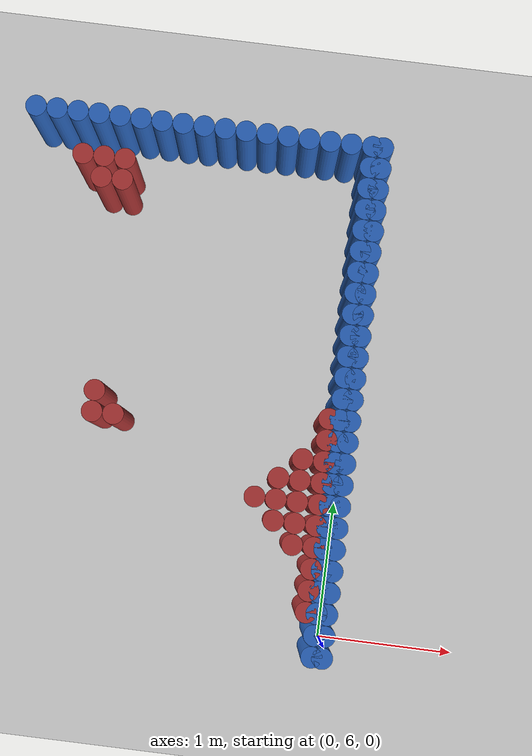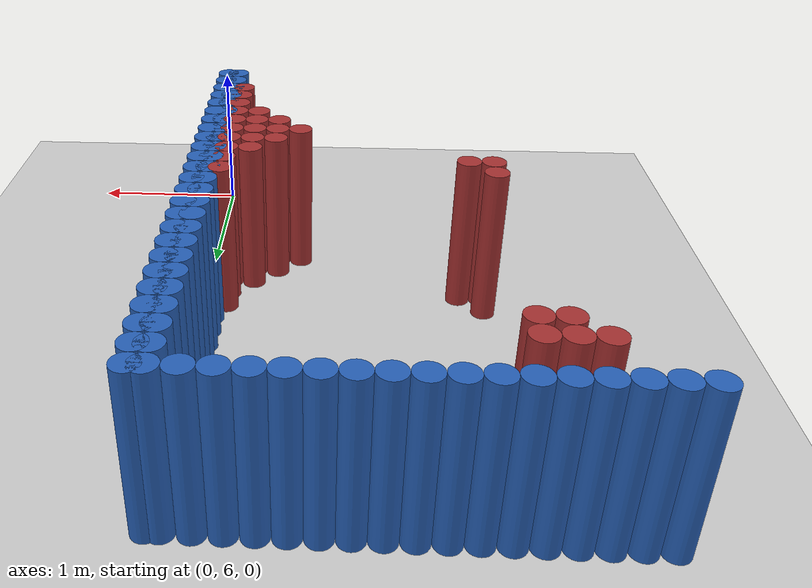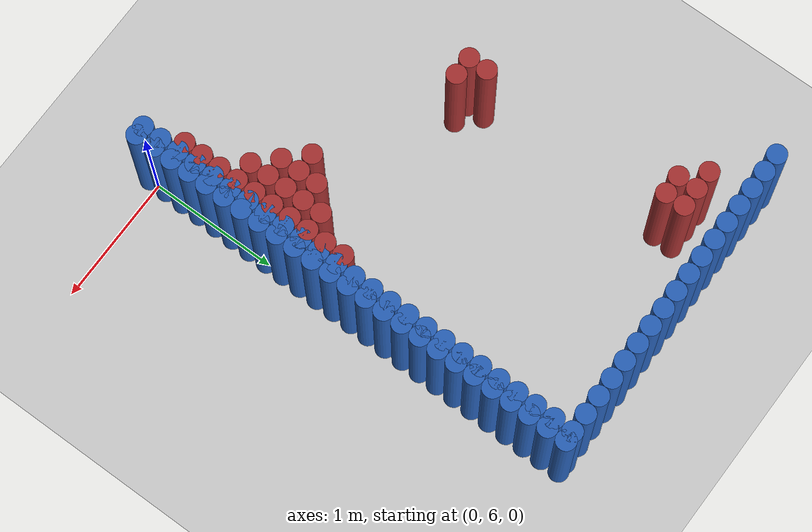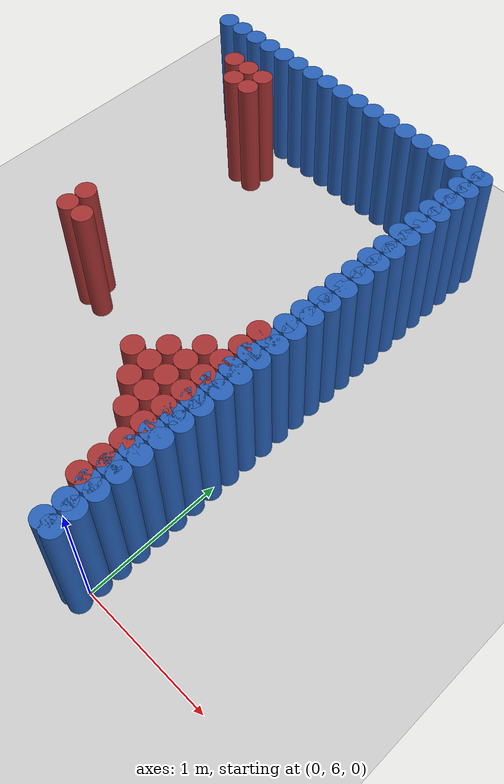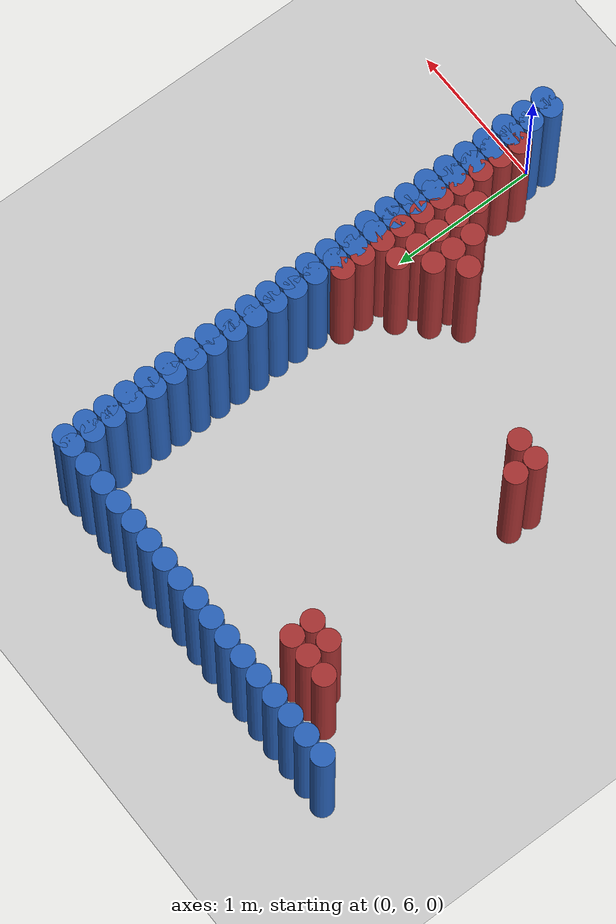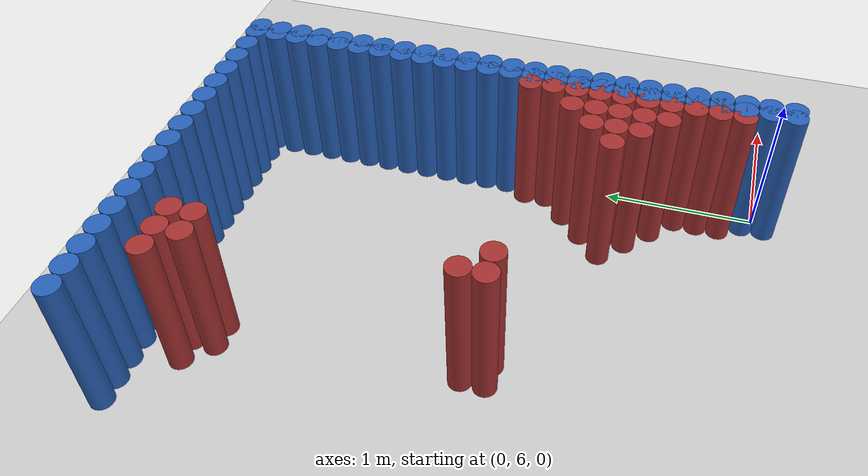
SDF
<sdf version="1.6">
 <world name="barn_world">
  <model name="ground_plane">
   <static>1</static>
   <link name="link">
    <collision name="collision">
     <geometry><plane><normal>0 0 1</normal><size>100 100</size></plane></geometry>
    </collision>
    <visual name="visual">
     <geometry><plane><normal>0 0 1</normal><size>100 100</size></plane></geometry>
     <material>
      <script><uri>file://media/materials/scripts/gazebo.material</uri><name>Gazebo/Grey</name></script>
     </material>
    </visual>
   </link>
  </model>
  <model name="unit_cylinder_220">
   <static>1</static>
   <pose>-2.1000 9.2250 0.5 0 0 0</pose>
   <link name="link">
    <collision name="collision">
     <geometry><cylinder><radius>0.075</radius><length>1</length></cylinder></geometry>
    </collision>
    <visual name="visual">
     <geometry><cylinder><radius>0.075</radius><length>1</length></cylinder></geometry>
     <material><ambient>0.648 0.192 0.192 1</ambient><diffuse>0.648 0.192 0.192 1</diffuse></material>
    </visual>
   </link>
  </model>
  <model name="unit_cylinder_223">
   <static>1</static>
   <pose>-1.9500 9.0750 0.5 0 0 0</pose>
   <link name="link">
    <collision name="collision">
     <geometry><cylinder><radius>0.075</radius><length>1</length></cylinder></geometry>
    </collision>
    <visual name="visual">
     <geometry><cylinder><radius>0.075</radius><length>1</length></cylinder></geometry>
     <material><ambient>0.648 0.192 0.192 1</ambient><diffuse>0.648 0.192 0.192 1</diffuse></material>
    </visual>
   </link>
  </model>
  <model name="unit_cylinder_224">
   <static>1</static>
   <pose>-1.9500 9.2250 0.5 0 0 0</pose>
   <link name="link">
    <collision name="collision">
     <geometry><cylinder><radius>0.075</radius><length>1</length></cylinder></geometry>
    </collision>
    <visual name="visual">
     <geometry><cylinder><radius>0.075</radius><length>1</length></cylinder></geometry>
     <material><ambient>0.648 0.192 0.192 1</ambient><diffuse>0.648 0.192 0.192 1</diffuse></material>
    </visual>
   </link>
  </model>
  <model name="unit_cylinder_225">
   <static>1</static>
   <pose>-1.8000 7.4250 0.5 0 0 0</pose>
   <link name="link">
    <collision name="collision">
     <geometry><cylinder><radius>0.075</radius><length>1</length></cylinder></geometry>
    </collision>
    <visual name="visual">
     <geometry><cylinder><radius>0.075</radius><length>1</length></cylinder></geometry>
     <material><ambient>0.648 0.192 0.192 1</ambient><diffuse>0.648 0.192 0.192 1</diffuse></material>
    </visual>
   </link>
  </model>
  <model name="unit_cylinder_226">
   <static>1</static>
   <pose>-1.8000 7.5750 0.5 0 0 0</pose>
   <link name="link">
    <collision name="collision">
     <geometry><cylinder><radius>0.075</radius><length>1</length></cylinder></geometry>
    </collision>
    <visual name="visual">
     <geometry><cylinder><radius>0.075</radius><length>1</length></cylinder></geometry>
     <material><ambient>0.648 0.192 0.192 1</ambient><diffuse>0.648 0.192 0.192 1</diffuse></material>
    </visual>
   </link>
  </model>
  <model name="unit_cylinder_227">
   <static>1</static>
   <pose>-1.8000 9.0750 0.5 0 0 0</pose>
   <link name="link">
    <collision name="collision">
     <geometry><cylinder><radius>0.075</radius><length>1</length></cylinder></geometry>
    </collision>
    <visual name="visual">
     <geometry><cylinder><radius>0.075</radius><length>1</length></cylinder></geometry>
     <material><ambient>0.648 0.192 0.192 1</ambient><diffuse>0.648 0.192 0.192 1</diffuse></material>
    </visual>
   </link>
  </model>
  <model name="unit_cylinder_228">
   <static>1</static>
   <pose>-1.8000 9.2250 0.5 0 0 0</pose>
   <link name="link">
    <collision name="collision">
     <geometry><cylinder><radius>0.075</radius><length>1</length></cylinder></geometry>
    </collision>
    <visual name="visual">
     <geometry><cylinder><radius>0.075</radius><length>1</length></cylinder></geometry>
     <material><ambient>0.648 0.192 0.192 1</ambient><diffuse>0.648 0.192 0.192 1</diffuse></material>
    </visual>
   </link>
  </model>
  <model name="unit_cylinder_229">
   <static>1</static>
   <pose>-1.6500 7.4250 0.5 0 0 0</pose>
   <link name="link">
    <collision name="collision">
     <geometry><cylinder><radius>0.075</radius><length>1</length></cylinder></geometry>
    </collision>
    <visual name="visual">
     <geometry><cylinder><radius>0.075</radius><length>1</length></cylinder></geometry>
     <material><ambient>0.648 0.192 0.192 1</ambient><diffuse>0.648 0.192 0.192 1</diffuse></material>
    </visual>
   </link>
  </model>
  <model name="unit_cylinder_230">
   <static>1</static>
   <pose>-0.6000 6.9750 0.5 0 0 0</pose>
   <link name="link">
    <collision name="collision">
     <geometry><cylinder><radius>0.075</radius><length>1</length></cylinder></geometry>
    </collision>
    <visual name="visual">
     <geometry><cylinder><radius>0.075</radius><length>1</length></cylinder></geometry>
     <material><ambient>0.648 0.192 0.192 1</ambient><diffuse>0.648 0.192 0.192 1</diffuse></material>
    </visual>
   </link>
  </model>
  <model name="unit_cylinder_231">
   <static>1</static>
   <pose>-0.4500 6.8250 0.5 0 0 0</pose>
   <link name="link">
    <collision name="collision">
     <geometry><cylinder><radius>0.075</radius><length>1</length></cylinder></geometry>
    </collision>
    <visual name="visual">
     <geometry><cylinder><radius>0.075</radius><length>1</length></cylinder></geometry>
     <material><ambient>0.648 0.192 0.192 1</ambient><diffuse>0.648 0.192 0.192 1</diffuse></material>
    </visual>
   </link>
  </model>
  <model name="unit_cylinder_232">
   <static>1</static>
   <pose>-0.4500 6.9750 0.5 0 0 0</pose>
   <link name="link">
    <collision name="collision">
     <geometry><cylinder><radius>0.075</radius><length>1</length></cylinder></geometry>
    </collision>
    <visual name="visual">
     <geometry><cylinder><radius>0.075</radius><length>1</length></cylinder></geometry>
     <material><ambient>0.648 0.192 0.192 1</ambient><diffuse>0.648 0.192 0.192 1</diffuse></material>
    </visual>
   </link>
  </model>
  <model name="unit_cylinder_233">
   <static>1</static>
   <pose>-0.4500 7.1250 0.5 0 0 0</pose>
   <link name="link">
    <collision name="collision">
     <geometry><cylinder><radius>0.075</radius><length>1</length></cylinder></geometry>
    </collision>
    <visual name="visual">
     <geometry><cylinder><radius>0.075</radius><length>1</length></cylinder></geometry>
     <material><ambient>0.648 0.192 0.192 1</ambient><diffuse>0.648 0.192 0.192 1</diffuse></material>
    </visual>
   </link>
  </model>
  <model name="unit_cylinder_235">
   <static>1</static>
   <pose>-0.3000 6.6750 0.5 0 0 0</pose>
   <link name="link">
    <collision name="collision">
     <geometry><cylinder><radius>0.075</radius><length>1</length></cylinder></geometry>
    </collision>
    <visual name="visual">
     <geometry><cylinder><radius>0.075</radius><length>1</length></cylinder></geometry>
     <material><ambient>0.648 0.192 0.192 1</ambient><diffuse>0.648 0.192 0.192 1</diffuse></material>
    </visual>
   </link>
  </model>
  <model name="unit_cylinder_236">
   <static>1</static>
   <pose>-0.3000 6.8250 0.5 0 0 0</pose>
   <link name="link">
    <collision name="collision">
     <geometry><cylinder><radius>0.075</radius><length>1</length></cylinder></geometry>
    </collision>
    <visual name="visual">
     <geometry><cylinder><radius>0.075</radius><length>1</length></cylinder></geometry>
     <material><ambient>0.648 0.192 0.192 1</ambient><diffuse>0.648 0.192 0.192 1</diffuse></material>
    </visual>
   </link>
  </model>
  <model name="unit_cylinder_237">
   <static>1</static>
   <pose>-0.3000 6.9750 0.5 0 0 0</pose>
   <link name="link">
    <collision name="collision">
     <geometry><cylinder><radius>0.075</radius><length>1</length></cylinder></geometry>
    </collision>
    <visual name="visual">
     <geometry><cylinder><radius>0.075</radius><length>1</length></cylinder></geometry>
     <material><ambient>0.648 0.192 0.192 1</ambient><diffuse>0.648 0.192 0.192 1</diffuse></material>
    </visual>
   </link>
  </model>
  <model name="unit_cylinder_238">
   <static>1</static>
   <pose>-0.3000 7.1250 0.5 0 0 0</pose>
   <link name="link">
    <collision name="collision">
     <geometry><cylinder><radius>0.075</radius><length>1</length></cylinder></geometry>
    </collision>
    <visual name="visual">
     <geometry><cylinder><radius>0.075</radius><length>1</length></cylinder></geometry>
     <material><ambient>0.648 0.192 0.192 1</ambient><diffuse>0.648 0.192 0.192 1</diffuse></material>
    </visual>
   </link>
  </model>
  <model name="unit_cylinder_239">
   <static>1</static>
   <pose>-0.3000 7.2750 0.5 0 0 0</pose>
   <link name="link">
    <collision name="collision">
     <geometry><cylinder><radius>0.075</radius><length>1</length></cylinder></geometry>
    </collision>
    <visual name="visual">
     <geometry><cylinder><radius>0.075</radius><length>1</length></cylinder></geometry>
     <material><ambient>0.648 0.192 0.192 1</ambient><diffuse>0.648 0.192 0.192 1</diffuse></material>
    </visual>
   </link>
  </model>
  <model name="unit_cylinder_243">
   <static>1</static>
   <pose>-0.1500 6.2250 0.5 0 0 0</pose>
   <link name="link">
    <collision name="collision">
     <geometry><cylinder><radius>0.075</radius><length>1</length></cylinder></geometry>
    </collision>
    <visual name="visual">
     <geometry><cylinder><radius>0.075</radius><length>1</length></cylinder></geometry>
     <material><ambient>0.648 0.192 0.192 1</ambient><diffuse>0.648 0.192 0.192 1</diffuse></material>
    </visual>
   </link>
  </model>
  <model name="unit_cylinder_244">
   <static>1</static>
   <pose>-0.1500 6.3750 0.5 0 0 0</pose>
   <link name="link">
    <collision name="collision">
     <geometry><cylinder><radius>0.075</radius><length>1</length></cylinder></geometry>
    </collision>
    <visual name="visual">
     <geometry><cylinder><radius>0.075</radius><length>1</length></cylinder></geometry>
     <material><ambient>0.648 0.192 0.192 1</ambient><diffuse>0.648 0.192 0.192 1</diffuse></material>
    </visual>
   </link>
  </model>
  <model name="unit_cylinder_245">
   <static>1</static>
   <pose>-0.1500 6.5250 0.5 0 0 0</pose>
   <link name="link">
    <collision name="collision">
     <geometry><cylinder><radius>0.075</radius><length>1</length></cylinder></geometry>
    </collision>
    <visual name="visual">
     <geometry><cylinder><radius>0.075</radius><length>1</length></cylinder></geometry>
     <material><ambient>0.648 0.192 0.192 1</ambient><diffuse>0.648 0.192 0.192 1</diffuse></material>
    </visual>
   </link>
  </model>
  <model name="unit_cylinder_246">
   <static>1</static>
   <pose>-0.1500 6.6750 0.5 0 0 0</pose>
   <link name="link">
    <collision name="collision">
     <geometry><cylinder><radius>0.075</radius><length>1</length></cylinder></geometry>
    </collision>
    <visual name="visual">
     <geometry><cylinder><radius>0.075</radius><length>1</length></cylinder></geometry>
     <material><ambient>0.648 0.192 0.192 1</ambient><diffuse>0.648 0.192 0.192 1</diffuse></material>
    </visual>
   </link>
  </model>
  <model name="unit_cylinder_247">
   <static>1</static>
   <pose>-0.1500 6.8250 0.5 0 0 0</pose>
   <link name="link">
    <collision name="collision">
     <geometry><cylinder><radius>0.075</radius><length>1</length></cylinder></geometry>
    </collision>
    <visual name="visual">
     <geometry><cylinder><radius>0.075</radius><length>1</length></cylinder></geometry>
     <material><ambient>0.648 0.192 0.192 1</ambient><diffuse>0.648 0.192 0.192 1</diffuse></material>
    </visual>
   </link>
  </model>
  <model name="unit_cylinder_248">
   <static>1</static>
   <pose>-0.1500 6.9750 0.5 0 0 0</pose>
   <link name="link">
    <collision name="collision">
     <geometry><cylinder><radius>0.075</radius><length>1</length></cylinder></geometry>
    </collision>
    <visual name="visual">
     <geometry><cylinder><radius>0.075</radius><length>1</length></cylinder></geometry>
     <material><ambient>0.648 0.192 0.192 1</ambient><diffuse>0.648 0.192 0.192 1</diffuse></material>
    </visual>
   </link>
  </model>
  <model name="unit_cylinder_249">
   <static>1</static>
   <pose>-0.1500 7.1250 0.5 0 0 0</pose>
   <link name="link">
    <collision name="collision">
     <geometry><cylinder><radius>0.075</radius><length>1</length></cylinder></geometry>
    </collision>
    <visual name="visual">
     <geometry><cylinder><radius>0.075</radius><length>1</length></cylinder></geometry>
     <material><ambient>0.648 0.192 0.192 1</ambient><diffuse>0.648 0.192 0.192 1</diffuse></material>
    </visual>
   </link>
  </model>
  <model name="unit_cylinder_250">
   <static>1</static>
   <pose>-0.1500 7.2750 0.5 0 0 0</pose>
   <link name="link">
    <collision name="collision">
     <geometry><cylinder><radius>0.075</radius><length>1</length></cylinder></geometry>
    </collision>
    <visual name="visual">
     <geometry><cylinder><radius>0.075</radius><length>1</length></cylinder></geometry>
     <material><ambient>0.648 0.192 0.192 1</ambient><diffuse>0.648 0.192 0.192 1</diffuse></material>
    </visual>
   </link>
  </model>
  <model name="unit_cylinder_251">
   <static>1</static>
   <pose>-0.1500 7.4250 0.5 0 0 0</pose>
   <link name="link">
    <collision name="collision">
     <geometry><cylinder><radius>0.075</radius><length>1</length></cylinder></geometry>
    </collision>
    <visual name="visual">
     <geometry><cylinder><radius>0.075</radius><length>1</length></cylinder></geometry>
     <material><ambient>0.648 0.192 0.192 1</ambient><diffuse>0.648 0.192 0.192 1</diffuse></material>
    </visual>
   </link>
  </model>
  <model name="unit_cylinder_252">
   <static>1</static>
   <pose>-0.1500 7.5750 0.5 0 0 0</pose>
   <link name="link">
    <collision name="collision">
     <geometry><cylinder><radius>0.075</radius><length>1</length></cylinder></geometry>
    </collision>
    <visual name="visual">
     <geometry><cylinder><radius>0.075</radius><length>1</length></cylinder></geometry>
     <material><ambient>0.648 0.192 0.192 1</ambient><diffuse>0.648 0.192 0.192 1</diffuse></material>
    </visual>
   </link>
  </model>
  <model name="unit_cylinder_258">
   <static>1</static>
   <pose>0.0000 5.9250 0.5 0 0 0</pose>
   <link name="link">
    <collision name="collision">
     <geometry><cylinder><radius>0.075</radius><length>1</length></cylinder></geometry>
    </collision>
    <visual name="visual">
     <geometry><cylinder><radius>0.075</radius><length>1</length></cylinder></geometry>
     <material><ambient>0.152 0.379 0.72 1</ambient><diffuse>0.152 0.379 0.72 1</diffuse></material>
    </visual>
   </link>
  </model>
  <model name="unit_cylinder_259">
   <static>1</static>
   <pose>0.0000 6.0750 0.5 0 0 0</pose>
   <link name="link">
    <collision name="collision">
     <geometry><cylinder><radius>0.075</radius><length>1</length></cylinder></geometry>
    </collision>
    <visual name="visual">
     <geometry><cylinder><radius>0.075</radius><length>1</length></cylinder></geometry>
     <material><ambient>0.152 0.379 0.72 1</ambient><diffuse>0.152 0.379 0.72 1</diffuse></material>
    </visual>
   </link>
  </model>
  <model name="unit_cylinder_260">
   <static>1</static>
   <pose>0.0000 6.2250 0.5 0 0 0</pose>
   <link name="link">
    <collision name="collision">
     <geometry><cylinder><radius>0.075</radius><length>1</length></cylinder></geometry>
    </collision>
    <visual name="visual">
     <geometry><cylinder><radius>0.075</radius><length>1</length></cylinder></geometry>
     <material><ambient>0.152 0.379 0.72 1</ambient><diffuse>0.152 0.379 0.72 1</diffuse></material>
    </visual>
   </link>
  </model>
  <model name="unit_cylinder_261">
   <static>1</static>
   <pose>0.0000 6.3750 0.5 0 0 0</pose>
   <link name="link">
    <collision name="collision">
     <geometry><cylinder><radius>0.075</radius><length>1</length></cylinder></geometry>
    </collision>
    <visual name="visual">
     <geometry><cylinder><radius>0.075</radius><length>1</length></cylinder></geometry>
     <material><ambient>0.152 0.379 0.72 1</ambient><diffuse>0.152 0.379 0.72 1</diffuse></material>
    </visual>
   </link>
  </model>
  <model name="unit_cylinder_262">
   <static>1</static>
   <pose>0.0000 6.5250 0.5 0 0 0</pose>
   <link name="link">
    <collision name="collision">
     <geometry><cylinder><radius>0.075</radius><length>1</length></cylinder></geometry>
    </collision>
    <visual name="visual">
     <geometry><cylinder><radius>0.075</radius><length>1</length></cylinder></geometry>
     <material><ambient>0.152 0.379 0.72 1</ambient><diffuse>0.152 0.379 0.72 1</diffuse></material>
    </visual>
   </link>
  </model>
  <model name="unit_cylinder_263">
   <static>1</static>
   <pose>0.0000 6.6750 0.5 0 0 0</pose>
   <link name="link">
    <collision name="collision">
     <geometry><cylinder><radius>0.075</radius><length>1</length></cylinder></geometry>
    </collision>
    <visual name="visual">
     <geometry><cylinder><radius>0.075</radius><length>1</length></cylinder></geometry>
     <material><ambient>0.152 0.379 0.72 1</ambient><diffuse>0.152 0.379 0.72 1</diffuse></material>
    </visual>
   </link>
  </model>
  <model name="unit_cylinder_264">
   <static>1</static>
   <pose>0.0000 6.8250 0.5 0 0 0</pose>
   <link name="link">
    <collision name="collision">
     <geometry><cylinder><radius>0.075</radius><length>1</length></cylinder></geometry>
    </collision>
    <visual name="visual">
     <geometry><cylinder><radius>0.075</radius><length>1</length></cylinder></geometry>
     <material><ambient>0.152 0.379 0.72 1</ambient><diffuse>0.152 0.379 0.72 1</diffuse></material>
    </visual>
   </link>
  </model>
  <model name="unit_cylinder_265">
   <static>1</static>
   <pose>0.0000 6.9750 0.5 0 0 0</pose>
   <link name="link">
    <collision name="collision">
     <geometry><cylinder><radius>0.075</radius><length>1</length></cylinder></geometry>
    </collision>
    <visual name="visual">
     <geometry><cylinder><radius>0.075</radius><length>1</length></cylinder></geometry>
     <material><ambient>0.152 0.379 0.72 1</ambient><diffuse>0.152 0.379 0.72 1</diffuse></material>
    </visual>
   </link>
  </model>
  <model name="unit_cylinder_266">
   <static>1</static>
   <pose>0.0000 7.1250 0.5 0 0 0</pose>
   <link name="link">
    <collision name="collision">
     <geometry><cylinder><radius>0.075</radius><length>1</length></cylinder></geometry>
    </collision>
    <visual name="visual">
     <geometry><cylinder><radius>0.075</radius><length>1</length></cylinder></geometry>
     <material><ambient>0.152 0.379 0.72 1</ambient><diffuse>0.152 0.379 0.72 1</diffuse></material>
    </visual>
   </link>
  </model>
  <model name="unit_cylinder_267">
   <static>1</static>
   <pose>0.0000 7.2750 0.5 0 0 0</pose>
   <link name="link">
    <collision name="collision">
     <geometry><cylinder><radius>0.075</radius><length>1</length></cylinder></geometry>
    </collision>
    <visual name="visual">
     <geometry><cylinder><radius>0.075</radius><length>1</length></cylinder></geometry>
     <material><ambient>0.152 0.379 0.72 1</ambient><diffuse>0.152 0.379 0.72 1</diffuse></material>
    </visual>
   </link>
  </model>
  <model name="unit_cylinder_268">
   <static>1</static>
   <pose>0.0000 7.4250 0.5 0 0 0</pose>
   <link name="link">
    <collision name="collision">
     <geometry><cylinder><radius>0.075</radius><length>1</length></cylinder></geometry>
    </collision>
    <visual name="visual">
     <geometry><cylinder><radius>0.075</radius><length>1</length></cylinder></geometry>
     <material><ambient>0.152 0.379 0.72 1</ambient><diffuse>0.152 0.379 0.72 1</diffuse></material>
    </visual>
   </link>
  </model>
  <model name="unit_cylinder_269">
   <static>1</static>
   <pose>0.0000 7.5750 0.5 0 0 0</pose>
   <link name="link">
    <collision name="collision">
     <geometry><cylinder><radius>0.075</radius><length>1</length></cylinder></geometry>
    </collision>
    <visual name="visual">
     <geometry><cylinder><radius>0.075</radius><length>1</length></cylinder></geometry>
     <material><ambient>0.152 0.379 0.72 1</ambient><diffuse>0.152 0.379 0.72 1</diffuse></material>
    </visual>
   </link>
  </model>
  <model name="unit_cylinder_270">
   <static>1</static>
   <pose>0.0000 7.7250 0.5 0 0 0</pose>
   <link name="link">
    <collision name="collision">
     <geometry><cylinder><radius>0.075</radius><length>1</length></cylinder></geometry>
    </collision>
    <visual name="visual">
     <geometry><cylinder><radius>0.075</radius><length>1</length></cylinder></geometry>
     <material><ambient>0.152 0.379 0.72 1</ambient><diffuse>0.152 0.379 0.72 1</diffuse></material>
    </visual>
   </link>
  </model>
  <model name="unit_cylinder_271">
   <static>1</static>
   <pose>0.0000 7.8750 0.5 0 0 0</pose>
   <link name="link">
    <collision name="collision">
     <geometry><cylinder><radius>0.075</radius><length>1</length></cylinder></geometry>
    </collision>
    <visual name="visual">
     <geometry><cylinder><radius>0.075</radius><length>1</length></cylinder></geometry>
     <material><ambient>0.152 0.379 0.72 1</ambient><diffuse>0.152 0.379 0.72 1</diffuse></material>
    </visual>
   </link>
  </model>
  <model name="unit_cylinder_272">
   <static>1</static>
   <pose>0.0000 8.0250 0.5 0 0 0</pose>
   <link name="link">
    <collision name="collision">
     <geometry><cylinder><radius>0.075</radius><length>1</length></cylinder></geometry>
    </collision>
    <visual name="visual">
     <geometry><cylinder><radius>0.075</radius><length>1</length></cylinder></geometry>
     <material><ambient>0.152 0.379 0.72 1</ambient><diffuse>0.152 0.379 0.72 1</diffuse></material>
    </visual>
   </link>
  </model>
  <model name="unit_cylinder_273">
   <static>1</static>
   <pose>0.0000 8.1750 0.5 0 0 0</pose>
   <link name="link">
    <collision name="collision">
     <geometry><cylinder><radius>0.075</radius><length>1</length></cylinder></geometry>
    </collision>
    <visual name="visual">
     <geometry><cylinder><radius>0.075</radius><length>1</length></cylinder></geometry>
     <material><ambient>0.152 0.379 0.72 1</ambient><diffuse>0.152 0.379 0.72 1</diffuse></material>
    </visual>
   </link>
  </model>
  <model name="unit_cylinder_274">
   <static>1</static>
   <pose>0.0000 8.3250 0.5 0 0 0</pose>
   <link name="link">
    <collision name="collision">
     <geometry><cylinder><radius>0.075</radius><length>1</length></cylinder></geometry>
    </collision>
    <visual name="visual">
     <geometry><cylinder><radius>0.075</radius><length>1</length></cylinder></geometry>
     <material><ambient>0.152 0.379 0.72 1</ambient><diffuse>0.152 0.379 0.72 1</diffuse></material>
    </visual>
   </link>
  </model>
  <model name="unit_cylinder_275">
   <static>1</static>
   <pose>0.0000 8.4750 0.5 0 0 0</pose>
   <link name="link">
    <collision name="collision">
     <geometry><cylinder><radius>0.075</radius><length>1</length></cylinder></geometry>
    </collision>
    <visual name="visual">
     <geometry><cylinder><radius>0.075</radius><length>1</length></cylinder></geometry>
     <material><ambient>0.152 0.379 0.72 1</ambient><diffuse>0.152 0.379 0.72 1</diffuse></material>
    </visual>
   </link>
  </model>
  <model name="unit_cylinder_276">
   <static>1</static>
   <pose>0.0000 8.6250 0.5 0 0 0</pose>
   <link name="link">
    <collision name="collision">
     <geometry><cylinder><radius>0.075</radius><length>1</length></cylinder></geometry>
    </collision>
    <visual name="visual">
     <geometry><cylinder><radius>0.075</radius><length>1</length></cylinder></geometry>
     <material><ambient>0.152 0.379 0.72 1</ambient><diffuse>0.152 0.379 0.72 1</diffuse></material>
    </visual>
   </link>
  </model>
  <model name="unit_cylinder_277">
   <static>1</static>
   <pose>0.0000 8.7750 0.5 0 0 0</pose>
   <link name="link">
    <collision name="collision">
     <geometry><cylinder><radius>0.075</radius><length>1</length></cylinder></geometry>
    </collision>
    <visual name="visual">
     <geometry><cylinder><radius>0.075</radius><length>1</length></cylinder></geometry>
     <material><ambient>0.152 0.379 0.72 1</ambient><diffuse>0.152 0.379 0.72 1</diffuse></material>
    </visual>
   </link>
  </model>
  <model name="unit_cylinder_278">
   <static>1</static>
   <pose>0.0000 8.9250 0.5 0 0 0</pose>
   <link name="link">
    <collision name="collision">
     <geometry><cylinder><radius>0.075</radius><length>1</length></cylinder></geometry>
    </collision>
    <visual name="visual">
     <geometry><cylinder><radius>0.075</radius><length>1</length></cylinder></geometry>
     <material><ambient>0.152 0.379 0.72 1</ambient><diffuse>0.152 0.379 0.72 1</diffuse></material>
    </visual>
   </link>
  </model>
  <model name="unit_cylinder_279">
   <static>1</static>
   <pose>0.0000 9.0750 0.5 0 0 0</pose>
   <link name="link">
    <collision name="collision">
     <geometry><cylinder><radius>0.075</radius><length>1</length></cylinder></geometry>
    </collision>
    <visual name="visual">
     <geometry><cylinder><radius>0.075</radius><length>1</length></cylinder></geometry>
     <material><ambient>0.152 0.379 0.72 1</ambient><diffuse>0.152 0.379 0.72 1</diffuse></material>
    </visual>
   </link>
  </model>
  <model name="unit_cylinder_280">
   <static>1</static>
   <pose>0.0000 9.2250 0.5 0 0 0</pose>
   <link name="link">
    <collision name="collision">
     <geometry><cylinder><radius>0.075</radius><length>1</length></cylinder></geometry>
    </collision>
    <visual name="visual">
     <geometry><cylinder><radius>0.075</radius><length>1</length></cylinder></geometry>
     <material><ambient>0.152 0.379 0.72 1</ambient><diffuse>0.152 0.379 0.72 1</diffuse></material>
    </visual>
   </link>
  </model>
  <model name="unit_cylinder_281">
   <static>1</static>
   <pose>0.0000 9.3750 0.5 0 0 0</pose>
   <link name="link">
    <collision name="collision">
     <geometry><cylinder><radius>0.075</radius><length>1</length></cylinder></geometry>
    </collision>
    <visual name="visual">
     <geometry><cylinder><radius>0.075</radius><length>1</length></cylinder></geometry>
     <material><ambient>0.152 0.379 0.72 1</ambient><diffuse>0.152 0.379 0.72 1</diffuse></material>
    </visual>
   </link>
  </model>
  <model name="unit_cylinder_282">
   <static>1</static>
   <pose>0.0000 9.5250 0.5 0 0 0</pose>
   <link name="link">
    <collision name="collision">
     <geometry><cylinder><radius>0.075</radius><length>1</length></cylinder></geometry>
    </collision>
    <visual name="visual">
     <geometry><cylinder><radius>0.075</radius><length>1</length></cylinder></geometry>
     <material><ambient>0.152 0.379 0.72 1</ambient><diffuse>0.152 0.379 0.72 1</diffuse></material>
    </visual>
   </link>
  </model>
  <model name="unit_cylinder_283">
   <static>1</static>
   <pose>-0.0750 9.5250 0.5 0 0 0</pose>
   <link name="link">
    <collision name="collision">
     <geometry><cylinder><radius>0.075</radius><length>1</length></cylinder></geometry>
    </collision>
    <visual name="visual">
     <geometry><cylinder><radius>0.075</radius><length>1</length></cylinder></geometry>
     <material><ambient>0.152 0.379 0.72 1</ambient><diffuse>0.152 0.379 0.72 1</diffuse></material>
    </visual>
   </link>
  </model>
  <model name="unit_cylinder_284">
   <static>1</static>
   <pose>-0.2250 9.5250 0.5 0 0 0</pose>
   <link name="link">
    <collision name="collision">
     <geometry><cylinder><radius>0.075</radius><length>1</length></cylinder></geometry>
    </collision>
    <visual name="visual">
     <geometry><cylinder><radius>0.075</radius><length>1</length></cylinder></geometry>
     <material><ambient>0.152 0.379 0.72 1</ambient><diffuse>0.152 0.379 0.72 1</diffuse></material>
    </visual>
   </link>
  </model>
  <model name="unit_cylinder_285">
   <static>1</static>
   <pose>-0.3750 9.5250 0.5 0 0 0</pose>
   <link name="link">
    <collision name="collision">
     <geometry><cylinder><radius>0.075</radius><length>1</length></cylinder></geometry>
    </collision>
    <visual name="visual">
     <geometry><cylinder><radius>0.075</radius><length>1</length></cylinder></geometry>
     <material><ambient>0.152 0.379 0.72 1</ambient><diffuse>0.152 0.379 0.72 1</diffuse></material>
    </visual>
   </link>
  </model>
  <model name="unit_cylinder_286">
   <static>1</static>
   <pose>-0.5250 9.5250 0.5 0 0 0</pose>
   <link name="link">
    <collision name="collision">
     <geometry><cylinder><radius>0.075</radius><length>1</length></cylinder></geometry>
    </collision>
    <visual name="visual">
     <geometry><cylinder><radius>0.075</radius><length>1</length></cylinder></geometry>
     <material><ambient>0.152 0.379 0.72 1</ambient><diffuse>0.152 0.379 0.72 1</diffuse></material>
    </visual>
   </link>
  </model>
  <model name="unit_cylinder_287">
   <static>1</static>
   <pose>-0.6750 9.5250 0.5 0 0 0</pose>
   <link name="link">
    <collision name="collision">
     <geometry><cylinder><radius>0.075</radius><length>1</length></cylinder></geometry>
    </collision>
    <visual name="visual">
     <geometry><cylinder><radius>0.075</radius><length>1</length></cylinder></geometry>
     <material><ambient>0.152 0.379 0.72 1</ambient><diffuse>0.152 0.379 0.72 1</diffuse></material>
    </visual>
   </link>
  </model>
  <model name="unit_cylinder_288">
   <static>1</static>
   <pose>-0.8250 9.5250 0.5 0 0 0</pose>
   <link name="link">
    <collision name="collision">
     <geometry><cylinder><radius>0.075</radius><length>1</length></cylinder></geometry>
    </collision>
    <visual name="visual">
     <geometry><cylinder><radius>0.075</radius><length>1</length></cylinder></geometry>
     <material><ambient>0.152 0.379 0.72 1</ambient><diffuse>0.152 0.379 0.72 1</diffuse></material>
    </visual>
   </link>
  </model>
  <model name="unit_cylinder_289">
   <static>1</static>
   <pose>-0.9750 9.5250 0.5 0 0 0</pose>
   <link name="link">
    <collision name="collision">
     <geometry><cylinder><radius>0.075</radius><length>1</length></cylinder></geometry>
    </collision>
    <visual name="visual">
     <geometry><cylinder><radius>0.075</radius><length>1</length></cylinder></geometry>
     <material><ambient>0.152 0.379 0.72 1</ambient><diffuse>0.152 0.379 0.72 1</diffuse></material>
    </visual>
   </link>
  </model>
  <model name="unit_cylinder_290">
   <static>1</static>
   <pose>-1.1250 9.5250 0.5 0 0 0</pose>
   <link name="link">
    <collision name="collision">
     <geometry><cylinder><radius>0.075</radius><length>1</length></cylinder></geometry>
    </collision>
    <visual name="visual">
     <geometry><cylinder><radius>0.075</radius><length>1</length></cylinder></geometry>
     <material><ambient>0.152 0.379 0.72 1</ambient><diffuse>0.152 0.379 0.72 1</diffuse></material>
    </visual>
   </link>
  </model>
  <model name="unit_cylinder_291">
   <static>1</static>
   <pose>-1.2750 9.5250 0.5 0 0 0</pose>
   <link name="link">
    <collision name="collision">
     <geometry><cylinder><radius>0.075</radius><length>1</length></cylinder></geometry>
    </collision>
    <visual name="visual">
     <geometry><cylinder><radius>0.075</radius><length>1</length></cylinder></geometry>
     <material><ambient>0.152 0.379 0.72 1</ambient><diffuse>0.152 0.379 0.72 1</diffuse></material>
    </visual>
   </link>
  </model>
  <model name="unit_cylinder_292">
   <static>1</static>
   <pose>-1.4250 9.5250 0.5 0 0 0</pose>
   <link name="link">
    <collision name="collision">
     <geometry><cylinder><radius>0.075</radius><length>1</length></cylinder></geometry>
    </collision>
    <visual name="visual">
     <geometry><cylinder><radius>0.075</radius><length>1</length></cylinder></geometry>
     <material><ambient>0.152 0.379 0.72 1</ambient><diffuse>0.152 0.379 0.72 1</diffuse></material>
    </visual>
   </link>
  </model>
  <model name="unit_cylinder_293">
   <static>1</static>
   <pose>-1.5750 9.5250 0.5 0 0 0</pose>
   <link name="link">
    <collision name="collision">
     <geometry><cylinder><radius>0.075</radius><length>1</length></cylinder></geometry>
    </collision>
    <visual name="visual">
     <geometry><cylinder><radius>0.075</radius><length>1</length></cylinder></geometry>
     <material><ambient>0.152 0.379 0.72 1</ambient><diffuse>0.152 0.379 0.72 1</diffuse></material>
    </visual>
   </link>
  </model>
  <model name="unit_cylinder_294">
   <static>1</static>
   <pose>-1.7250 9.5250 0.5 0 0 0</pose>
   <link name="link">
    <collision name="collision">
     <geometry><cylinder><radius>0.075</radius><length>1</length></cylinder></geometry>
    </collision>
    <visual name="visual">
     <geometry><cylinder><radius>0.075</radius><length>1</length></cylinder></geometry>
     <material><ambient>0.152 0.379 0.72 1</ambient><diffuse>0.152 0.379 0.72 1</diffuse></material>
    </visual>
   </link>
  </model>
  <model name="unit_cylinder_295">
   <static>1</static>
   <pose>-1.8750 9.5250 0.5 0 0 0</pose>
   <link name="link">
    <collision name="collision">
     <geometry><cylinder><radius>0.075</radius><length>1</length></cylinder></geometry>
    </collision>
    <visual name="visual">
     <geometry><cylinder><radius>0.075</radius><length>1</length></cylinder></geometry>
     <material><ambient>0.152 0.379 0.72 1</ambient><diffuse>0.152 0.379 0.72 1</diffuse></material>
    </visual>
   </link>
  </model>
  <model name="unit_cylinder_296">
   <static>1</static>
   <pose>-2.0250 9.5250 0.5 0 0 0</pose>
   <link name="link">
    <collision name="collision">
     <geometry><cylinder><radius>0.075</radius><length>1</length></cylinder></geometry>
    </collision>
    <visual name="visual">
     <geometry><cylinder><radius>0.075</radius><length>1</length></cylinder></geometry>
     <material><ambient>0.152 0.379 0.72 1</ambient><diffuse>0.152 0.379 0.72 1</diffuse></material>
    </visual>
   </link>
  </model>
  <model name="unit_cylinder_297">
   <static>1</static>
   <pose>-2.1750 9.5250 0.5 0 0 0</pose>
   <link name="link">
    <collision name="collision">
     <geometry><cylinder><radius>0.075</radius><length>1</length></cylinder></geometry>
    </collision>
    <visual name="visual">
     <geometry><cylinder><radius>0.075</radius><length>1</length></cylinder></geometry>
     <material><ambient>0.152 0.379 0.72 1</ambient><diffuse>0.152 0.379 0.72 1</diffuse></material>
    </visual>
   </link>
  </model>
  <model name="unit_cylinder_298">
   <static>1</static>
   <pose>-2.3250 9.5250 0.5 0 0 0</pose>
   <link name="link">
    <collision name="collision">
     <geometry><cylinder><radius>0.075</radius><length>1</length></cylinder></geometry>
    </collision>
    <visual name="visual">
     <geometry><cylinder><radius>0.075</radius><length>1</length></cylinder></geometry>
     <material><ambient>0.152 0.379 0.72 1</ambient><diffuse>0.152 0.379 0.72 1</diffuse></material>
    </visual>
   </link>
  </model>
  <model name="unit_cylinder_299">
   <static>1</static>
   <pose>-2.4750 9.5250 0.5 0 0 0</pose>
   <link name="link">
    <collision name="collision">
     <geometry><cylinder><radius>0.075</radius><length>1</length></cylinder></geometry>
    </collision>
    <visual name="visual">
     <geometry><cylinder><radius>0.075</radius><length>1</length></cylinder></geometry>
     <material><ambient>0.152 0.379 0.72 1</ambient><diffuse>0.152 0.379 0.72 1</diffuse></material>
    </visual>
   </link>
  </model>
  <model name="unit_cylinder_323">
   <static>1</static>
   <pose>-0.0750 5.9250 0.5 0 0 0</pose>
   <link name="link">
    <collision name="collision">
     <geometry><cylinder><radius>0.075</radius><length>1</length></cylinder></geometry>
    </collision>
    <visual name="visual">
     <geometry><cylinder><radius>0.075</radius><length>1</length></cylinder></geometry>
     <material><ambient>0.152 0.379 0.72 1</ambient><diffuse>0.152 0.379 0.72 1</diffuse></material>
    </visual>
   </link>
  </model>
  <model name="unit_cylinder_325">
   <static>1</static>
   <pose>-0.0750 6.0750 0.5 0 0 0</pose>
   <link name="link">
    <collision name="collision">
     <geometry><cylinder><radius>0.075</radius><length>1</length></cylinder></geometry>
    </collision>
    <visual name="visual">
     <geometry><cylinder><radius>0.075</radius><length>1</length></cylinder></geometry>
     <material><ambient>0.152 0.379 0.72 1</ambient><diffuse>0.152 0.379 0.72 1</diffuse></material>
    </visual>
   </link>
  </model>
  <model name="unit_cylinder_327">
   <static>1</static>
   <pose>-0.0750 6.2250 0.5 0 0 0</pose>
   <link name="link">
    <collision name="collision">
     <geometry><cylinder><radius>0.075</radius><length>1</length></cylinder></geometry>
    </collision>
    <visual name="visual">
     <geometry><cylinder><radius>0.075</radius><length>1</length></cylinder></geometry>
     <material><ambient>0.152 0.379 0.72 1</ambient><diffuse>0.152 0.379 0.72 1</diffuse></material>
    </visual>
   </link>
  </model>
  <model name="unit_cylinder_329">
   <static>1</static>
   <pose>-0.0750 6.3750 0.5 0 0 0</pose>
   <link name="link">
    <collision name="collision">
     <geometry><cylinder><radius>0.075</radius><length>1</length></cylinder></geometry>
    </collision>
    <visual name="visual">
     <geometry><cylinder><radius>0.075</radius><length>1</length></cylinder></geometry>
     <material><ambient>0.152 0.379 0.72 1</ambient><diffuse>0.152 0.379 0.72 1</diffuse></material>
    </visual>
   </link>
  </model>
  <model name="unit_cylinder_331">
   <static>1</static>
   <pose>-0.0750 6.5250 0.5 0 0 0</pose>
   <link name="link">
    <collision name="collision">
     <geometry><cylinder><radius>0.075</radius><length>1</length></cylinder></geometry>
    </collision>
    <visual name="visual">
     <geometry><cylinder><radius>0.075</radius><length>1</length></cylinder></geometry>
     <material><ambient>0.152 0.379 0.72 1</ambient><diffuse>0.152 0.379 0.72 1</diffuse></material>
    </visual>
   </link>
  </model>
  <model name="unit_cylinder_333">
   <static>1</static>
   <pose>-0.0750 6.6750 0.5 0 0 0</pose>
   <link name="link">
    <collision name="collision">
     <geometry><cylinder><radius>0.075</radius><length>1</length></cylinder></geometry>
    </collision>
    <visual name="visual">
     <geometry><cylinder><radius>0.075</radius><length>1</length></cylinder></geometry>
     <material><ambient>0.152 0.379 0.72 1</ambient><diffuse>0.152 0.379 0.72 1</diffuse></material>
    </visual>
   </link>
  </model>
  <model name="unit_cylinder_335">
   <static>1</static>
   <pose>-0.0750 6.8250 0.5 0 0 0</pose>
   <link name="link">
    <collision name="collision">
     <geometry><cylinder><radius>0.075</radius><length>1</length></cylinder></geometry>
    </collision>
    <visual name="visual">
     <geometry><cylinder><radius>0.075</radius><length>1</length></cylinder></geometry>
     <material><ambient>0.152 0.379 0.72 1</ambient><diffuse>0.152 0.379 0.72 1</diffuse></material>
    </visual>
   </link>
  </model>
  <model name="unit_cylinder_337">
   <static>1</static>
   <pose>-0.0750 6.9750 0.5 0 0 0</pose>
   <link name="link">
    <collision name="collision">
     <geometry><cylinder><radius>0.075</radius><length>1</length></cylinder></geometry>
    </collision>
    <visual name="visual">
     <geometry><cylinder><radius>0.075</radius><length>1</length></cylinder></geometry>
     <material><ambient>0.152 0.379 0.72 1</ambient><diffuse>0.152 0.379 0.72 1</diffuse></material>
    </visual>
   </link>
  </model>
  <model name="unit_cylinder_339">
   <static>1</static>
   <pose>-0.0750 7.1250 0.5 0 0 0</pose>
   <link name="link">
    <collision name="collision">
     <geometry><cylinder><radius>0.075</radius><length>1</length></cylinder></geometry>
    </collision>
    <visual name="visual">
     <geometry><cylinder><radius>0.075</radius><length>1</length></cylinder></geometry>
     <material><ambient>0.152 0.379 0.72 1</ambient><diffuse>0.152 0.379 0.72 1</diffuse></material>
    </visual>
   </link>
  </model>
  <model name="unit_cylinder_341">
   <static>1</static>
   <pose>-0.0750 7.2750 0.5 0 0 0</pose>
   <link name="link">
    <collision name="collision">
     <geometry><cylinder><radius>0.075</radius><length>1</length></cylinder></geometry>
    </collision>
    <visual name="visual">
     <geometry><cylinder><radius>0.075</radius><length>1</length></cylinder></geometry>
     <material><ambient>0.152 0.379 0.72 1</ambient><diffuse>0.152 0.379 0.72 1</diffuse></material>
    </visual>
   </link>
  </model>
  <model name="unit_cylinder_343">
   <static>1</static>
   <pose>-0.0750 7.4250 0.5 0 0 0</pose>
   <link name="link">
    <collision name="collision">
     <geometry><cylinder><radius>0.075</radius><length>1</length></cylinder></geometry>
    </collision>
    <visual name="visual">
     <geometry><cylinder><radius>0.075</radius><length>1</length></cylinder></geometry>
     <material><ambient>0.152 0.379 0.72 1</ambient><diffuse>0.152 0.379 0.72 1</diffuse></material>
    </visual>
   </link>
  </model>
  <model name="unit_cylinder_345">
   <static>1</static>
   <pose>-0.0750 7.5750 0.5 0 0 0</pose>
   <link name="link">
    <collision name="collision">
     <geometry><cylinder><radius>0.075</radius><length>1</length></cylinder></geometry>
    </collision>
    <visual name="visual">
     <geometry><cylinder><radius>0.075</radius><length>1</length></cylinder></geometry>
     <material><ambient>0.152 0.379 0.72 1</ambient><diffuse>0.152 0.379 0.72 1</diffuse></material>
    </visual>
   </link>
  </model>
  <model name="unit_cylinder_347">
   <static>1</static>
   <pose>-0.0750 7.7250 0.5 0 0 0</pose>
   <link name="link">
    <collision name="collision">
     <geometry><cylinder><radius>0.075</radius><length>1</length></cylinder></geometry>
    </collision>
    <visual name="visual">
     <geometry><cylinder><radius>0.075</radius><length>1</length></cylinder></geometry>
     <material><ambient>0.152 0.379 0.72 1</ambient><diffuse>0.152 0.379 0.72 1</diffuse></material>
    </visual>
   </link>
  </model>
  <model name="unit_cylinder_349">
   <static>1</static>
   <pose>-0.0750 7.8750 0.5 0 0 0</pose>
   <link name="link">
    <collision name="collision">
     <geometry><cylinder><radius>0.075</radius><length>1</length></cylinder></geometry>
    </collision>
    <visual name="visual">
     <geometry><cylinder><radius>0.075</radius><length>1</length></cylinder></geometry>
     <material><ambient>0.152 0.379 0.72 1</ambient><diffuse>0.152 0.379 0.72 1</diffuse></material>
    </visual>
   </link>
  </model>
  <model name="unit_cylinder_351">
   <static>1</static>
   <pose>-0.0750 8.0250 0.5 0 0 0</pose>
   <link name="link">
    <collision name="collision">
     <geometry><cylinder><radius>0.075</radius><length>1</length></cylinder></geometry>
    </collision>
    <visual name="visual">
     <geometry><cylinder><radius>0.075</radius><length>1</length></cylinder></geometry>
     <material><ambient>0.152 0.379 0.72 1</ambient><diffuse>0.152 0.379 0.72 1</diffuse></material>
    </visual>
   </link>
  </model>
  <model name="unit_cylinder_353">
   <static>1</static>
   <pose>-0.0750 8.1750 0.5 0 0 0</pose>
   <link name="link">
    <collision name="collision">
     <geometry><cylinder><radius>0.075</radius><length>1</length></cylinder></geometry>
    </collision>
    <visual name="visual">
     <geometry><cylinder><radius>0.075</radius><length>1</length></cylinder></geometry>
     <material><ambient>0.152 0.379 0.72 1</ambient><diffuse>0.152 0.379 0.72 1</diffuse></material>
    </visual>
   </link>
  </model>
  <model name="unit_cylinder_355">
   <static>1</static>
   <pose>-0.0750 8.3250 0.5 0 0 0</pose>
   <link name="link">
    <collision name="collision">
     <geometry><cylinder><radius>0.075</radius><length>1</length></cylinder></geometry>
    </collision>
    <visual name="visual">
     <geometry><cylinder><radius>0.075</radius><length>1</length></cylinder></geometry>
     <material><ambient>0.152 0.379 0.72 1</ambient><diffuse>0.152 0.379 0.72 1</diffuse></material>
    </visual>
   </link>
  </model>
  <model name="unit_cylinder_357">
   <static>1</static>
   <pose>-0.0750 8.4750 0.5 0 0 0</pose>
   <link name="link">
    <collision name="collision">
     <geometry><cylinder><radius>0.075</radius><length>1</length></cylinder></geometry>
    </collision>
    <visual name="visual">
     <geometry><cylinder><radius>0.075</radius><length>1</length></cylinder></geometry>
     <material><ambient>0.152 0.379 0.72 1</ambient><diffuse>0.152 0.379 0.72 1</diffuse></material>
    </visual>
   </link>
  </model>
  <model name="unit_cylinder_359">
   <static>1</static>
   <pose>-0.0750 8.6250 0.5 0 0 0</pose>
   <link name="link">
    <collision name="collision">
     <geometry><cylinder><radius>0.075</radius><length>1</length></cylinder></geometry>
    </collision>
    <visual name="visual">
     <geometry><cylinder><radius>0.075</radius><length>1</length></cylinder></geometry>
     <material><ambient>0.152 0.379 0.72 1</ambient><diffuse>0.152 0.379 0.72 1</diffuse></material>
    </visual>
   </link>
  </model>
  <model name="unit_cylinder_361">
   <static>1</static>
   <pose>-0.0750 8.7750 0.5 0 0 0</pose>
   <link name="link">
    <collision name="collision">
     <geometry><cylinder><radius>0.075</radius><length>1</length></cylinder></geometry>
    </collision>
    <visual name="visual">
     <geometry><cylinder><radius>0.075</radius><length>1</length></cylinder></geometry>
     <material><ambient>0.152 0.379 0.72 1</ambient><diffuse>0.152 0.379 0.72 1</diffuse></material>
    </visual>
   </link>
  </model>
  <model name="unit_cylinder_363">
   <static>1</static>
   <pose>-0.0750 8.9250 0.5 0 0 0</pose>
   <link name="link">
    <collision name="collision">
     <geometry><cylinder><radius>0.075</radius><length>1</length></cylinder></geometry>
    </collision>
    <visual name="visual">
     <geometry><cylinder><radius>0.075</radius><length>1</length></cylinder></geometry>
     <material><ambient>0.152 0.379 0.72 1</ambient><diffuse>0.152 0.379 0.72 1</diffuse></material>
    </visual>
   </link>
  </model>
  <model name="unit_cylinder_365">
   <static>1</static>
   <pose>-0.0750 9.0750 0.5 0 0 0</pose>
   <link name="link">
    <collision name="collision">
     <geometry><cylinder><radius>0.075</radius><length>1</length></cylinder></geometry>
    </collision>
    <visual name="visual">
     <geometry><cylinder><radius>0.075</radius><length>1</length></cylinder></geometry>
     <material><ambient>0.152 0.379 0.72 1</ambient><diffuse>0.152 0.379 0.72 1</diffuse></material>
    </visual>
   </link>
  </model>
  <model name="unit_cylinder_367">
   <static>1</static>
   <pose>-0.0750 9.2250 0.5 0 0 0</pose>
   <link name="link">
    <collision name="collision">
     <geometry><cylinder><radius>0.075</radius><length>1</length></cylinder></geometry>
    </collision>
    <visual name="visual">
     <geometry><cylinder><radius>0.075</radius><length>1</length></cylinder></geometry>
     <material><ambient>0.152 0.379 0.72 1</ambient><diffuse>0.152 0.379 0.72 1</diffuse></material>
    </visual>
   </link>
  </model>
  <model name="unit_cylinder_369">
   <static>1</static>
   <pose>-0.0750 9.3750 0.5 0 0 0</pose>
   <link name="link">
    <collision name="collision">
     <geometry><cylinder><radius>0.075</radius><length>1</length></cylinder></geometry>
    </collision>
    <visual name="visual">
     <geometry><cylinder><radius>0.075</radius><length>1</length></cylinder></geometry>
     <material><ambient>0.152 0.379 0.72 1</ambient><diffuse>0.152 0.379 0.72 1</diffuse></material>
    </visual>
   </link>
  </model>
 </world>
</sdf>
